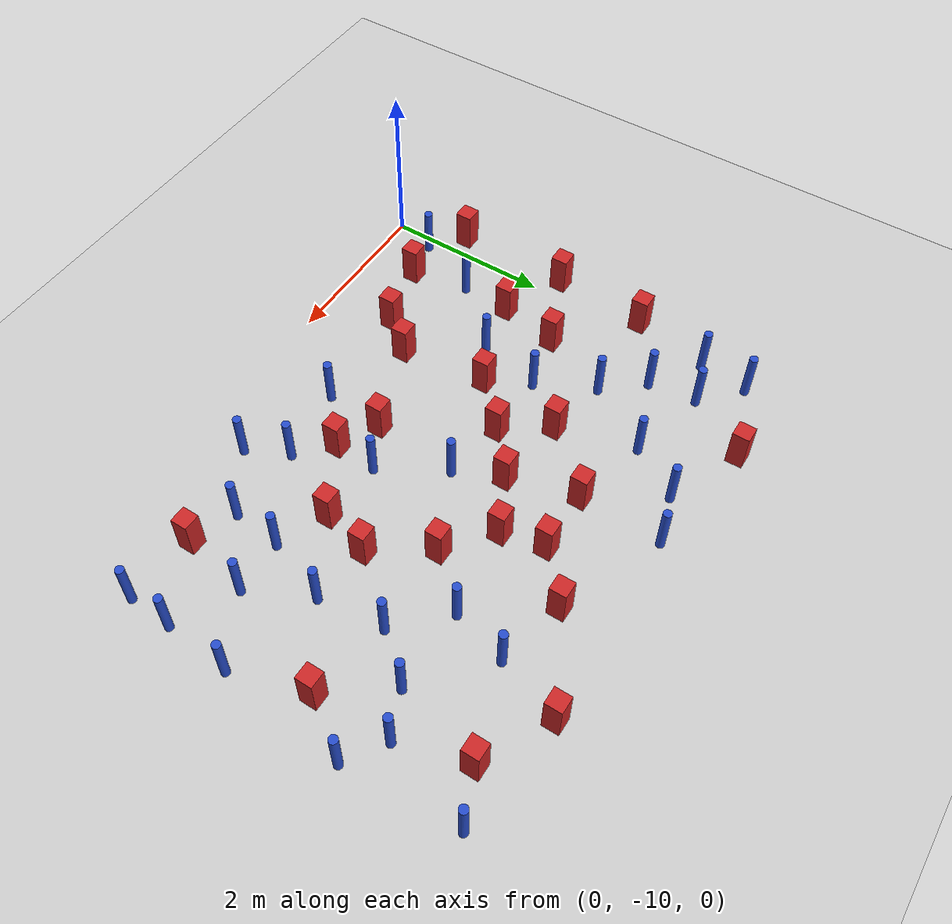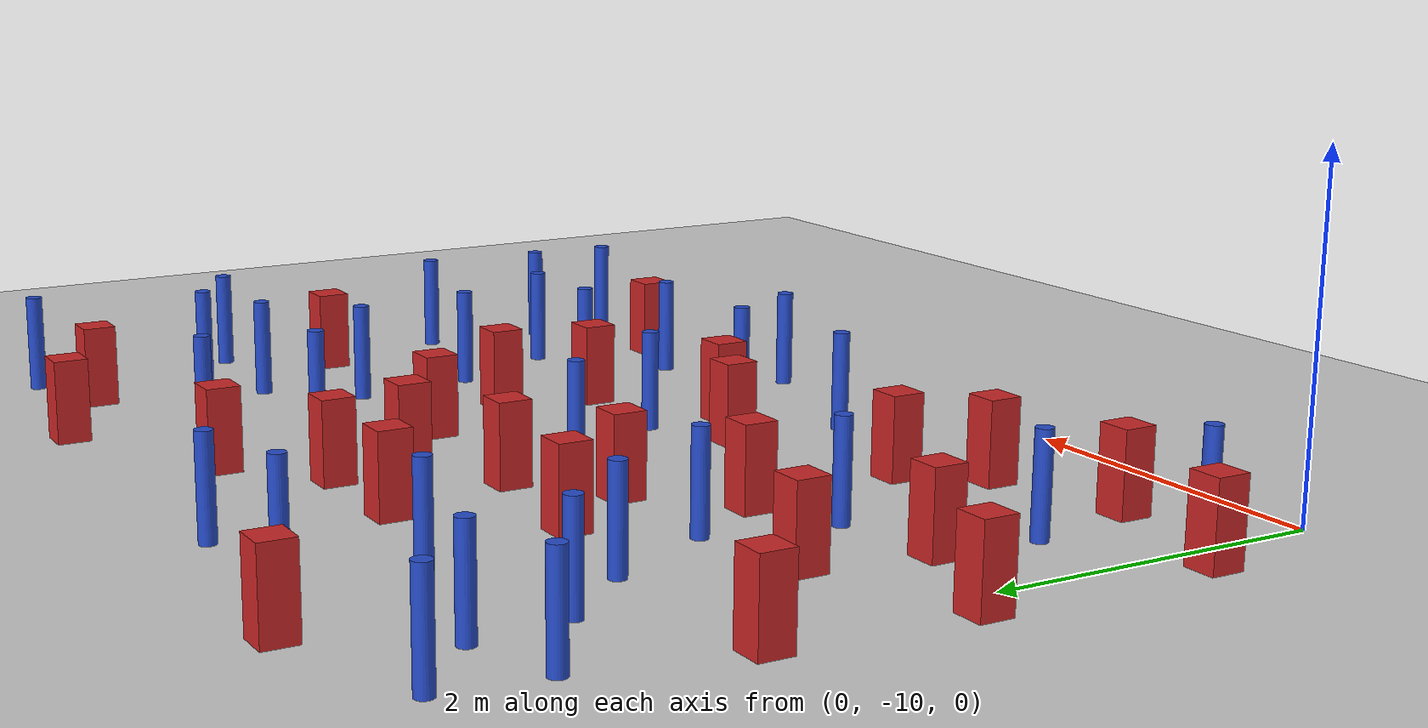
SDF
<sdf version="1.6">
 <world name="default">
  <model name="ground_plane">
   <static>1</static>
   <link name="link">
    <collision name="collision">
     <geometry><plane><normal>0 0 1</normal><size>100 100</size></plane></geometry>
     <surface><friction><ode><mu>100</mu><mu2>50</mu2></ode></friction></surface>
    </collision>
    <visual name="visual">
     <cast_shadows>0</cast_shadows>
     <geometry><plane><normal>0 0 1</normal><size>100 100</size></plane></geometry>
     <material>
      <ambient>1.0 1.0 1.0 1.0</ambient>
      <diffuse>0.8 0.8 0.8 1.0</diffuse>
      <specular>0.01 0.01 0.01 1.000000</specular>
     </material>
    </visual>
   </link>
  </model>
  <model name="pole_obstacle6">
   <static>true</static>
   <pose>4.70599011204 -8.35303087441 7.38925637345e-09 -8.471706928e-08 1.24976765081e-08 -1.74513093015e-07</pose>
   <link name="link">
    <pose>0 0 0.3 0 -0 0</pose>
    <inertial>
     <mass>1</mass>
     <inertia><ixx>0.145833</ixx><ixy>0</ixy><ixz>0</ixz><iyy>0.145833</iyy><iyz>0</iyz><izz>0.125</izz></inertia>
    </inertial>
    <collision name="collision">
     <geometry><cylinder><radius>0.05</radius><length>.6</length></cylinder></geometry>
    </collision>
    <visual name="visual">
     <geometry><cylinder><radius>0.05</radius><length>.6</length></cylinder></geometry>
     <material>
      <script><name>Gazebo/Blue</name><uri>file://media/materials/scripts/gazebo.material</uri></script>
     </material>
    </visual>
   </link>
  </model>
  <model name="square_post_obstacle5">
   <static>true</static>
   <pose>5.84599909969 -6.99812463571 1.91545236811e-07 -7.35059704564e-06 1.12565212e-07 2.39332434364e-05</pose>
   <link name="link">
    <pose>0 0 0.25 0 -0 0</pose>
    <inertial>
     <mass>100</mass>
     <inertia>
      <ixx>0.166667</ixx>
      <ixy>0</ixy>
      <ixz>0</ixz>
      <iyy>0.166667</iyy>
      <iyz>0</iyz>
      <izz>0.166667</izz>
     </inertia>
    </inertial>
    <collision name="collision"><geometry><box><size>.2 .2 .5</size></box></geometry></collision>
    <visual name="visual">
     <geometry><box><size>.2 .2 .5</size></box></geometry>
     <material>
      <script><name>Gazebo/Red</name><uri>file://media/materials/scripts/gazebo.material</uri></script>
     </material>
    </visual>
   </link>
  </model>
  <model name="square_post_obstacle7">
   <static>true</static>
   <pose>3.74116895942 -5.48608894107 1.91545236811e-07 -7.35059704564e-06 1.12565212e-07 2.39332434364e-05</pose>
   <link name="link">
    <pose>0 0 0.25 0 -0 0</pose>
    <inertial>
     <mass>100</mass>
     <inertia>
      <ixx>0.166667</ixx>
      <ixy>0</ixy>
      <ixz>0</ixz>
      <iyy>0.166667</iyy>
      <iyz>0</iyz>
      <izz>0.166667</izz>
     </inertia>
    </inertial>
    <collision name="collision"><geometry><box><size>.2 .2 .5</size></box></geometry></collision>
    <visual name="visual">
     <geometry><box><size>.2 .2 .5</size></box></geometry>
     <material>
      <script><name>Gazebo/Red</name><uri>file://media/materials/scripts/gazebo.material</uri></script>
     </material>
    </visual>
   </link>
  </model>
  <model name="pole_obstacle9">
   <static>true</static>
   <pose>2.92601557178 -7.32535560312 7.38925637345e-09 -8.47170692798e-08 1.24976765033e-08 -1.74513093019e-07</pose>
   <link name="link">
    <pose>0 0 0.3 0 -0 0</pose>
    <inertial>
     <mass>1</mass>
     <inertia><ixx>0.145833</ixx><ixy>0</ixy><ixz>0</ixz><iyy>0.145833</iyy><iyz>0</iyz><izz>0.125</izz></inertia>
    </inertial>
    <collision name="collision">
     <geometry><cylinder><radius>0.05</radius><length>.6</length></cylinder></geometry>
    </collision>
    <visual name="visual">
     <geometry><cylinder><radius>0.05</radius><length>.6</length></cylinder></geometry>
     <material>
      <script><name>Gazebo/Blue</name><uri>file://media/materials/scripts/gazebo.material</uri></script>
     </material>
    </visual>
   </link>
  </model>
  <model name="square_post_obstacle9">
   <static>true</static>
   <pose>1.453826613 -9.14333168105 1.91545236811e-07 -7.35059704564e-06 1.12565212e-07 2.39332434364e-05</pose>
   <link name="link">
    <pose>0 0 0.25 0 -0 0</pose>
    <inertial>
     <mass>100</mass>
     <inertia>
      <ixx>0.166667</ixx>
      <ixy>0</ixy>
      <ixz>0</ixz>
      <iyy>0.166667</iyy>
      <iyz>0</iyz>
      <izz>0.166667</izz>
     </inertia>
    </inertial>
    <collision name="collision"><geometry><box><size>.2 .2 .5</size></box></geometry></collision>
    <visual name="visual">
     <geometry><box><size>.2 .2 .5</size></box></geometry>
     <material>
      <script><name>Gazebo/Red</name><uri>file://media/materials/scripts/gazebo.material</uri></script>
     </material>
    </visual>
   </link>
  </model>
  <model name="square_post_obstacle18">
   <static>true</static>
   <pose>-0.133258296363 -6.60814210632 1.91545236811e-07 -7.35059704564e-06 1.12565212e-07 2.39332434364e-05</pose>
   <link name="link">
    <pose>0 0 0.25 0 -0 0</pose>
    <inertial>
     <mass>100</mass>
     <inertia>
      <ixx>0.166667</ixx>
      <ixy>0</ixy>
      <ixz>0</ixz>
      <iyy>0.166667</iyy>
      <iyz>0</iyz>
      <izz>0.166667</izz>
     </inertia>
    </inertial>
    <collision name="collision"><geometry><box><size>.2 .2 .5</size></box></geometry></collision>
    <visual name="visual">
     <geometry><box><size>.2 .2 .5</size></box></geometry>
     <material>
      <script><name>Gazebo/Red</name><uri>file://media/materials/scripts/gazebo.material</uri></script>
     </material>
    </visual>
   </link>
  </model>
  <model name="pole_obstacle25">
   <static>true</static>
   <pose>2.79421802704 -9.0634090278 7.38925637345e-09 -8.47170692793e-08 1.24976764408e-08 -1.74513093041e-07</pose>
   <link name="link">
    <pose>0 0 0.3 0 -0 0</pose>
    <inertial>
     <mass>1</mass>
     <inertia><ixx>0.145833</ixx><ixy>0</ixy><ixz>0</ixz><iyy>0.145833</iyy><iyz>0</iyz><izz>0.125</izz></inertia>
    </inertial>
    <collision name="collision">
     <geometry><cylinder><radius>0.05</radius><length>.6</length></cylinder></geometry>
    </collision>
    <visual name="visual">
     <geometry><cylinder><radius>0.05</radius><length>.6</length></cylinder></geometry>
     <material>
      <script><name>Gazebo/Blue</name><uri>file://media/materials/scripts/gazebo.material</uri></script>
     </material>
    </visual>
   </link>
  </model>
  <model name="square_post_obstacle19">
   <static>true</static>
   <pose>2.46940544794 -5.96693848248 1.91545236811e-07 -7.35059704564e-06 1.12565212e-07 2.39332434364e-05</pose>
   <link name="link">
    <pose>0 0 0.25 0 -0 0</pose>
    <inertial>
     <mass>100</mass>
     <inertia>
      <ixx>0.166667</ixx>
      <ixy>0</ixy>
      <ixz>0</ixz>
      <iyy>0.166667</iyy>
      <iyz>0</iyz>
      <izz>0.166667</izz>
     </inertia>
    </inertial>
    <collision name="collision"><geometry><box><size>.2 .2 .5</size></box></geometry></collision>
    <visual name="visual">
     <geometry><box><size>.2 .2 .5</size></box></geometry>
     <material>
      <script><name>Gazebo/Red</name><uri>file://media/materials/scripts/gazebo.material</uri></script>
     </material>
    </visual>
   </link>
  </model>
  <model name="pole_obstacle38">
   <static>true</static>
   <pose>6.25783375898 -6.40446437467 7.38925637345e-09 -8.47170692796e-08 1.24976764786e-08 -1.74513093032e-07</pose>
   <link name="link">
    <pose>0 0 0.3 0 -0 0</pose>
    <inertial>
     <mass>1</mass>
     <inertia><ixx>0.145833</ixx><ixy>0</ixy><ixz>0</ixz><iyy>0.145833</iyy><iyz>0</iyz><izz>0.125</izz></inertia>
    </inertial>
    <collision name="collision">
     <geometry><cylinder><radius>0.05</radius><length>.6</length></cylinder></geometry>
    </collision>
    <visual name="visual">
     <geometry><cylinder><radius>0.05</radius><length>.6</length></cylinder></geometry>
     <material>
      <script><name>Gazebo/Blue</name><uri>file://media/materials/scripts/gazebo.material</uri></script>
     </material>
    </visual>
   </link>
  </model>
  <model name="pole_obstacle42">
   <static>true</static>
   <pose>5.82190105534 -6.11238558837 7.38925637345e-09 -8.47170692796e-08 1.24976764786e-08 -1.74513093032e-07</pose>
   <link name="link">
    <pose>0 0 0.3 0 -0 0</pose>
    <inertial>
     <mass>1</mass>
     <inertia><ixx>0.145833</ixx><ixy>0</ixy><ixz>0</ixz><iyy>0.145833</iyy><iyz>0</iyz><izz>0.125</izz></inertia>
    </inertial>
    <collision name="collision">
     <geometry><cylinder><radius>0.05</radius><length>.6</length></cylinder></geometry>
    </collision>
    <visual name="visual">
     <geometry><cylinder><radius>0.05</radius><length>.6</length></cylinder></geometry>
     <material>
      <script><name>Gazebo/Blue</name><uri>file://media/materials/scripts/gazebo.material</uri></script>
     </material>
    </visual>
   </link>
  </model>
  <model name="pole_obstacle49">
   <static>true</static>
   <pose>0.0575694196036 -5.68917199242 7.38925637345e-09 -8.471706928e-08 1.2497676505e-08 -1.74513093019e-07</pose>
   <link name="link">
    <pose>0 0 0.3 0 -0 0</pose>
    <inertial>
     <mass>1</mass>
     <inertia><ixx>0.145833</ixx><ixy>0</ixy><ixz>0</ixz><iyy>0.145833</iyy><iyz>0</iyz><izz>0.125</izz></inertia>
    </inertial>
    <collision name="collision">
     <geometry><cylinder><radius>0.05</radius><length>.6</length></cylinder></geometry>
    </collision>
    <visual name="visual">
     <geometry><cylinder><radius>0.05</radius><length>.6</length></cylinder></geometry>
     <material>
      <script><name>Gazebo/Blue</name><uri>file://media/materials/scripts/gazebo.material</uri></script>
     </material>
    </visual>
   </link>
  </model>
  <model name="pole_obstacle50">
   <static>true</static>
   <pose>1.03659716479 -6.53286727461 7.38925637345e-09 -8.47170692799e-08 1.24976765021e-08 -1.74513093019e-07</pose>
   <link name="link">
    <pose>0 0 0.3 0 -0 0</pose>
    <inertial>
     <mass>1</mass>
     <inertia><ixx>0.145833</ixx><ixy>0</ixy><ixz>0</ixz><iyy>0.145833</iyy><iyz>0</iyz><izz>0.125</izz></inertia>
    </inertial>
    <collision name="collision">
     <geometry><cylinder><radius>0.05</radius><length>.6</length></cylinder></geometry>
    </collision>
    <visual name="visual">
     <geometry><cylinder><radius>0.05</radius><length>.6</length></cylinder></geometry>
     <material>
      <script><name>Gazebo/Blue</name><uri>file://media/materials/scripts/gazebo.material</uri></script>
     </material>
    </visual>
   </link>
  </model>
  <model name="pole_obstacle56">
   <static>true</static>
   <pose>6.14910653015 -5.08947522745 7.38925637345e-09 -8.47170692796e-08 1.24976764786e-08 -1.74513093032e-07</pose>
   <link name="link">
    <pose>0 0 0.3 0 -0 0</pose>
    <inertial>
     <mass>1</mass>
     <inertia><ixx>0.145833</ixx><ixy>0</ixy><ixz>0</ixz><iyy>0.145833</iyy><iyz>0</iyz><izz>0.125</izz></inertia>
    </inertial>
    <collision name="collision">
     <geometry><cylinder><radius>0.05</radius><length>.6</length></cylinder></geometry>
    </collision>
    <visual name="visual">
     <geometry><cylinder><radius>0.05</radius><length>.6</length></cylinder></geometry>
     <material>
      <script><name>Gazebo/Blue</name><uri>file://media/materials/scripts/gazebo.material</uri></script>
     </material>
    </visual>
   </link>
  </model>
  <model name="pole_obstacle59">
   <static>true</static>
   <pose>1.54319813354 -5.74601661786 7.38925637345e-09 -8.47170692799e-08 1.24976765033e-08 -1.74513093018e-07</pose>
   <link name="link">
    <pose>0 0 0.3 0 -0 0</pose>
    <inertial>
     <mass>1</mass>
     <inertia><ixx>0.145833</ixx><ixy>0</ixy><ixz>0</ixz><iyy>0.145833</iyy><iyz>0</iyz><izz>0.125</izz></inertia>
    </inertial>
    <collision name="collision">
     <geometry><cylinder><radius>0.05</radius><length>.6</length></cylinder></geometry>
    </collision>
    <visual name="visual">
     <geometry><cylinder><radius>0.05</radius><length>.6</length></cylinder></geometry>
     <material>
      <script><name>Gazebo/Blue</name><uri>file://media/materials/scripts/gazebo.material</uri></script>
     </material>
    </visual>
   </link>
  </model>
  <model name="pole_obstacle66">
   <static>true</static>
   <pose>0.640128559874 -6.07977227123 7.38925637345e-09 -8.471706928e-08 1.24976765086e-08 -1.74513093015e-07</pose>
   <link name="link">
    <pose>0 0 0.3 0 -0 0</pose>
    <inertial>
     <mass>1</mass>
     <inertia><ixx>0.145833</ixx><ixy>0</ixy><ixz>0</ixz><iyy>0.145833</iyy><iyz>0</iyz><izz>0.125</izz></inertia>
    </inertial>
    <collision name="collision">
     <geometry><cylinder><radius>0.05</radius><length>.6</length></cylinder></geometry>
    </collision>
    <visual name="visual">
     <geometry><cylinder><radius>0.05</radius><length>.6</length></cylinder></geometry>
     <material>
      <script><name>Gazebo/Blue</name><uri>file://media/materials/scripts/gazebo.material</uri></script>
     </material>
    </visual>
   </link>
  </model>
  <model name="square_post_obstacle50">
   <static>true</static>
   <pose>5.1624968223 -9.11893360538 1.91545236811e-07 -7.35059704564e-06 1.12565212e-07 2.39332434364e-05</pose>
   <link name="link">
    <pose>0 0 0.25 0 -0 0</pose>
    <inertial>
     <mass>100</mass>
     <inertia>
      <ixx>0.166667</ixx>
      <ixy>0</ixy>
      <ixz>0</ixz>
      <iyy>0.166667</iyy>
      <iyz>0</iyz>
      <izz>0.166667</izz>
     </inertia>
    </inertial>
    <collision name="collision"><geometry><box><size>.2 .2 .5</size></box></geometry></collision>
    <visual name="visual">
     <geometry><box><size>.2 .2 .5</size></box></geometry>
     <material>
      <script><name>Gazebo/Red</name><uri>file://media/materials/scripts/gazebo.material</uri></script>
     </material>
    </visual>
   </link>
  </model>
  <model name="pole_obstacle74">
   <static>true</static>
   <pose>6.00557308897 -9.20032743257 7.38925637345e-09 -8.471706928e-08 1.24976765081e-08 -1.74513093015e-07</pose>
   <link name="link">
    <pose>0 0 0.3 0 -0 0</pose>
    <inertial>
     <mass>1</mass>
     <inertia><ixx>0.145833</ixx><ixy>0</ixy><ixz>0</ixz><iyy>0.145833</iyy><iyz>0</iyz><izz>0.125</izz></inertia>
    </inertial>
    <collision name="collision">
     <geometry><cylinder><radius>0.05</radius><length>.6</length></cylinder></geometry>
    </collision>
    <visual name="visual">
     <geometry><cylinder><radius>0.05</radius><length>.6</length></cylinder></geometry>
     <material>
      <script><name>Gazebo/Blue</name><uri>file://media/materials/scripts/gazebo.material</uri></script>
     </material>
    </visual>
   </link>
  </model>
  <model name="square_post_obstacle64">
   <static>true</static>
   <pose>-0.236108590649 -9.14486215484 1.91545236811e-07 -7.35059704564e-06 1.12565212e-07 2.39332434364e-05</pose>
   <link name="link">
    <pose>0 0 0.25 0 -0 0</pose>
    <inertial>
     <mass>100</mass>
     <inertia>
      <ixx>0.166667</ixx>
      <ixy>0</ixy>
      <ixz>0</ixz>
      <iyy>0.166667</iyy>
      <iyz>0</iyz>
      <izz>0.166667</izz>
     </inertia>
    </inertial>
    <collision name="collision"><geometry><box><size>.2 .2 .5</size></box></geometry></collision>
    <visual name="visual">
     <geometry><box><size>.2 .2 .5</size></box></geometry>
     <material>
      <script><name>Gazebo/Red</name><uri>file://media/materials/scripts/gazebo.material</uri></script>
     </material>
    </visual>
   </link>
  </model>
  <model name="pole_obstacle75">
   <static>true</static>
   <pose>2.4912127473 -4.98205959685 7.38925637345e-09 -8.47170692798e-08 1.24976765033e-08 -1.74513093019e-07</pose>
   <link name="link">
    <pose>0 0 0.3 0 -0 0</pose>
    <inertial>
     <mass>1</mass>
     <inertia><ixx>0.145833</ixx><ixy>0</ixy><ixz>0</ixz><iyy>0.145833</iyy><iyz>0</iyz><izz>0.125</izz></inertia>
    </inertial>
    <collision name="collision">
     <geometry><cylinder><radius>0.05</radius><length>.6</length></cylinder></geometry>
    </collision>
    <visual name="visual">
     <geometry><cylinder><radius>0.05</radius><length>.6</length></cylinder></geometry>
     <material>
      <script><name>Gazebo/Blue</name><uri>file://media/materials/scripts/gazebo.material</uri></script>
     </material>
    </visual>
   </link>
  </model>
  <model name="pole_obstacle79">
   <static>true</static>
   <pose>4.54980420007 -5.67227279406 7.38925637345e-09 -8.47170692796e-08 1.24976764786e-08 -1.74513093032e-07</pose>
   <link name="link">
    <pose>0 0 0.3 0 -0 0</pose>
    <inertial>
     <mass>1</mass>
     <inertia><ixx>0.145833</ixx><ixy>0</ixy><ixz>0</ixz><iyy>0.145833</iyy><iyz>0</iyz><izz>0.125</izz></inertia>
    </inertial>
    <collision name="collision">
     <geometry><cylinder><radius>0.05</radius><length>.6</length></cylinder></geometry>
    </collision>
    <visual name="visual">
     <geometry><cylinder><radius>0.05</radius><length>.6</length></cylinder></geometry>
     <material>
      <script><name>Gazebo/Blue</name><uri>file://media/materials/scripts/gazebo.material</uri></script>
     </material>
    </visual>
   </link>
  </model>
  <model name="square_post_obstacle68">
   <static>true</static>
   <pose>0.697495034961 -7.36135825145 1.91545236811e-07 -7.35059704564e-06 1.12565212e-07 2.39332434364e-05</pose>
   <link name="link">
    <pose>0 0 0.25 0 -0 0</pose>
    <inertial>
     <mass>100</mass>
     <inertia>
      <ixx>0.166667</ixx>
      <ixy>0</ixy>
      <ixz>0</ixz>
      <iyy>0.166667</iyy>
      <iyz>0</iyz>
      <izz>0.166667</izz>
     </inertia>
    </inertial>
    <collision name="collision"><geometry><box><size>.2 .2 .5</size></box></geometry></collision>
    <visual name="visual">
     <geometry><box><size>.2 .2 .5</size></box></geometry>
     <material>
      <script><name>Gazebo/Red</name><uri>file://media/materials/scripts/gazebo.material</uri></script>
     </material>
    </visual>
   </link>
  </model>
  <model name="square_post_obstacle71">
   <static>true</static>
   <pose>3.31854605052 -6.45728962562 1.91545236811e-07 -7.35059704564e-06 1.12565212e-07 2.39332434364e-05</pose>
   <link name="link">
    <pose>0 0 0.25 0 -0 0</pose>
    <inertial>
     <mass>100</mass>
     <inertia>
      <ixx>0.166667</ixx>
      <ixy>0</ixy>
      <ixz>0</ixz>
      <iyy>0.166667</iyy>
      <iyz>0</iyz>
      <izz>0.166667</izz>
     </inertia>
    </inertial>
    <collision name="collision"><geometry><box><size>.2 .2 .5</size></box></geometry></collision>
    <visual name="visual">
     <geometry><box><size>.2 .2 .5</size></box></geometry>
     <material>
      <script><name>Gazebo/Red</name><uri>file://media/materials/scripts/gazebo.material</uri></script>
     </material>
    </visual>
   </link>
  </model>
  <model name="square_post_obstacle81">
   <static>true</static>
   <pose>-0.21473652017 -7.75049130402 1.91545236811e-07 -7.35059704564e-06 1.12565212e-07 2.39332434364e-05</pose>
   <link name="link">
    <pose>0 0 0.25 0 -0 0</pose>
    <inertial>
     <mass>100</mass>
     <inertia>
      <ixx>0.166667</ixx>
      <ixy>0</ixy>
      <ixz>0</ixz>
      <iyy>0.166667</iyy>
      <iyz>0</iyz>
      <izz>0.166667</izz>
     </inertia>
    </inertial>
    <collision name="collision"><geometry><box><size>.2 .2 .5</size></box></geometry></collision>
    <visual name="visual">
     <geometry><box><size>.2 .2 .5</size></box></geometry>
     <material>
      <script><name>Gazebo/Red</name><uri>file://media/materials/scripts/gazebo.material</uri></script>
     </material>
    </visual>
   </link>
  </model>
  <model name="square_post_obstacle88">
   <static>true</static>
   <pose>1.78398663204 -8.73605744649 1.91545236811e-07 -7.35059704564e-06 1.12565212e-07 2.39332434364e-05</pose>
   <link name="link">
    <pose>0 0 0.25 0 -0 0</pose>
    <inertial>
     <mass>100</mass>
     <inertia>
      <ixx>0.166667</ixx>
      <ixy>0</ixy>
      <ixz>0</ixz>
      <iyy>0.166667</iyy>
      <iyz>0</iyz>
      <izz>0.166667</izz>
     </inertia>
    </inertial>
    <collision name="collision"><geometry><box><size>.2 .2 .5</size></box></geometry></collision>
    <visual name="visual">
     <geometry><box><size>.2 .2 .5</size></box></geometry>
     <material>
      <script><name>Gazebo/Red</name><uri>file://media/materials/scripts/gazebo.material</uri></script>
     </material>
    </visual>
   </link>
  </model>
  <model name="square_post_obstacle89">
   <static>true</static>
   <pose>3.3332385579 -8.57081382859 1.91545236811e-07 -7.35059704564e-06 1.12565212e-07 2.39332434364e-05</pose>
   <link name="link">
    <pose>0 0 0.25 0 -0 0</pose>
    <inertial>
     <mass>100</mass>
     <inertia>
      <ixx>0.166667</ixx>
      <ixy>0</ixy>
      <ixz>0</ixz>
      <iyy>0.166667</iyy>
      <iyz>0</iyz>
      <izz>0.166667</izz>
     </inertia>
    </inertial>
    <collision name="collision"><geometry><box><size>.2 .2 .5</size></box></geometry></collision>
    <visual name="visual">
     <geometry><box><size>.2 .2 .5</size></box></geometry>
     <material>
      <script><name>Gazebo/Red</name><uri>file://media/materials/scripts/gazebo.material</uri></script>
     </material>
    </visual>
   </link>
  </model>
  <model name="pole_obstacle101">
   <static>true</static>
   <pose>4.63817925059 -8.93773486941 7.38925637345e-09 -8.471706928e-08 1.24976765081e-08 -1.74513093015e-07</pose>
   <link name="link">
    <pose>0 0 0.3 0 -0 0</pose>
    <inertial>
     <mass>1</mass>
     <inertia><ixx>0.145833</ixx><ixy>0</ixy><ixz>0</ixz><iyy>0.145833</iyy><iyz>0</iyz><izz>0.125</izz></inertia>
    </inertial>
    <collision name="collision">
     <geometry><cylinder><radius>0.05</radius><length>.6</length></cylinder></geometry>
    </collision>
    <visual name="visual">
     <geometry><cylinder><radius>0.05</radius><length>.6</length></cylinder></geometry>
     <material>
      <script><name>Gazebo/Blue</name><uri>file://media/materials/scripts/gazebo.material</uri></script>
     </material>
    </visual>
   </link>
  </model>
  <model name="square_post_obstacle95">
   <static>true</static>
   <pose>1.02875866102 -4.77887500821 1.91545236811e-07 -7.35059704564e-06 1.12565212e-07 2.39332434364e-05</pose>
   <link name="link">
    <pose>0 0 0.25 0 -0 0</pose>
    <inertial>
     <mass>100</mass>
     <inertia>
      <ixx>0.166667</ixx>
      <ixy>0</ixy>
      <ixz>0</ixz>
      <iyy>0.166667</iyy>
      <iyz>0</iyz>
      <izz>0.166667</izz>
     </inertia>
    </inertial>
    <collision name="collision"><geometry><box><size>.2 .2 .5</size></box></geometry></collision>
    <visual name="visual">
     <geometry><box><size>.2 .2 .5</size></box></geometry>
     <material>
      <script><name>Gazebo/Red</name><uri>file://media/materials/scripts/gazebo.material</uri></script>
     </material>
    </visual>
   </link>
  </model>
  <model name="square_post_obstacle96">
   <static>true</static>
   <pose>1.66711459529 -7.69625989773 1.91545236811e-07 -7.35059704564e-06 1.12565212e-07 2.39332434364e-05</pose>
   <link name="link">
    <pose>0 0 0.25 0 -0 0</pose>
    <inertial>
     <mass>100</mass>
     <inertia>
      <ixx>0.166667</ixx>
      <ixy>0</ixy>
      <ixz>0</ixz>
      <iyy>0.166667</iyy>
      <iyz>0</iyz>
      <izz>0.166667</izz>
     </inertia>
    </inertial>
    <collision name="collision"><geometry><box><size>.2 .2 .5</size></box></geometry></collision>
    <visual name="visual">
     <geometry><box><size>.2 .2 .5</size></box></geometry>
     <material>
      <script><name>Gazebo/Red</name><uri>file://media/materials/scripts/gazebo.material</uri></script>
     </material>
    </visual>
   </link>
  </model>
  <model name="square_post_obstacle107">
   <static>true</static>
   <pose>5.58822938069 -5.32369948415 1.91545236811e-07 -7.35059704564e-06 1.12565212e-07 2.39332434364e-05</pose>
   <link name="link">
    <pose>0 0 0.25 0 -0 0</pose>
    <inertial>
     <mass>100</mass>
     <inertia>
      <ixx>0.166667</ixx>
      <ixy>0</ixy>
      <ixz>0</ixz>
      <iyy>0.166667</iyy>
      <iyz>0</iyz>
      <izz>0.166667</izz>
     </inertia>
    </inertial>
    <collision name="collision"><geometry><box><size>.2 .2 .5</size></box></geometry></collision>
    <visual name="visual">
     <geometry><box><size>.2 .2 .5</size></box></geometry>
     <material>
      <script><name>Gazebo/Red</name><uri>file://media/materials/scripts/gazebo.material</uri></script>
     </material>
    </visual>
   </link>
  </model>
  <model name="square_post_obstacle117">
   <static>true</static>
   <pose>0.556778686371 -8.07036091322 1.91545236811e-07 -7.35059704564e-06 1.12565212e-07 2.39332434364e-05</pose>
   <link name="link">
    <pose>0 0 0.25 0 -0 0</pose>
    <inertial>
     <mass>100</mass>
     <inertia>
      <ixx>0.166667</ixx>
      <ixy>0</ixy>
      <ixz>0</ixz>
      <iyy>0.166667</iyy>
      <iyz>0</iyz>
      <izz>0.166667</izz>
     </inertia>
    </inertial>
    <collision name="collision"><geometry><box><size>.2 .2 .5</size></box></geometry></collision>
    <visual name="visual">
     <geometry><box><size>.2 .2 .5</size></box></geometry>
     <material>
      <script><name>Gazebo/Red</name><uri>file://media/materials/scripts/gazebo.material</uri></script>
     </material>
    </visual>
   </link>
  </model>
  <model name="pole_obstacle125">
   <static>true</static>
   <pose>6.10894767228 -7.88280483212 7.38925637345e-09 -8.47170692796e-08 1.24976764786e-08 -1.74513093032e-07</pose>
   <link name="link">
    <pose>0 0 0.3 0 -0 0</pose>
    <inertial>
     <mass>1</mass>
     <inertia><ixx>0.145833</ixx><ixy>0</ixy><ixz>0</ixz><iyy>0.145833</iyy><iyz>0</iyz><izz>0.125</izz></inertia>
    </inertial>
    <collision name="collision">
     <geometry><cylinder><radius>0.05</radius><length>.6</length></cylinder></geometry>
    </collision>
    <visual name="visual">
     <geometry><cylinder><radius>0.05</radius><length>.6</length></cylinder></geometry>
     <material>
      <script><name>Gazebo/Blue</name><uri>file://media/materials/scripts/gazebo.material</uri></script>
     </material>
    </visual>
   </link>
  </model>
  <model name="square_post_obstacle122">
   <static>true</static>
   <pose>0.644417306333 -9.36694796628 1.91545236811e-07 -7.35059704564e-06 1.12565212e-07 2.39332434364e-05</pose>
   <link name="link">
    <pose>0 0 0.25 0 -0 0</pose>
    <inertial>
     <mass>100</mass>
     <inertia>
      <ixx>0.166667</ixx>
      <ixy>0</ixy>
      <ixz>0</ixz>
      <iyy>0.166667</iyy>
      <iyz>0</iyz>
      <izz>0.166667</izz>
     </inertia>
    </inertial>
    <collision name="collision"><geometry><box><size>.2 .2 .5</size></box></geometry></collision>
    <visual name="visual">
     <geometry><box><size>.2 .2 .5</size></box></geometry>
     <material>
      <script><name>Gazebo/Red</name><uri>file://media/materials/scripts/gazebo.material</uri></script>
     </material>
    </visual>
   </link>
  </model>
  <model name="pole_obstacle140">
   <static>true</static>
   <pose>4.36152807272 -6.32047424083 7.38925637345e-09 -8.47170692796e-08 1.24976764786e-08 -1.74513093032e-07</pose>
   <link name="link">
    <pose>0 0 0.3 0 -0 0</pose>
    <inertial>
     <mass>1</mass>
     <inertia><ixx>0.145833</ixx><ixy>0</ixy><ixz>0</ixz><iyy>0.145833</iyy><iyz>0</iyz><izz>0.125</izz></inertia>
    </inertial>
    <collision name="collision">
     <geometry><cylinder><radius>0.05</radius><length>.6</length></cylinder></geometry>
    </collision>
    <visual name="visual">
     <geometry><cylinder><radius>0.05</radius><length>.6</length></cylinder></geometry>
     <material>
      <script><name>Gazebo/Blue</name><uri>file://media/materials/scripts/gazebo.material</uri></script>
     </material>
    </visual>
   </link>
  </model>
  <model name="pole_obstacle156">
   <static>true</static>
   <pose>0.572919057052 -5.50793135223 7.38925637345e-09 -8.471706928e-08 1.24976765086e-08 -1.74513093015e-07</pose>
   <link name="link">
    <pose>0 0 0.3 0 -0 0</pose>
    <inertial>
     <mass>1</mass>
     <inertia><ixx>0.145833</ixx><ixy>0</ixy><ixz>0</ixz><iyy>0.145833</iyy><iyz>0</iyz><izz>0.125</izz></inertia>
    </inertial>
    <collision name="collision">
     <geometry><cylinder><radius>0.05</radius><length>.6</length></cylinder></geometry>
    </collision>
    <visual name="visual">
     <geometry><cylinder><radius>0.05</radius><length>.6</length></cylinder></geometry>
     <material>
      <script><name>Gazebo/Blue</name><uri>file://media/materials/scripts/gazebo.material</uri></script>
     </material>
    </visual>
   </link>
  </model>
  <model name="square_post_obstacle159">
   <static>true</static>
   <pose>4.12752347349 -8.09570269114 1.91545236811e-07 -7.35059704564e-06 1.12565212e-07 2.39332434364e-05</pose>
   <link name="link">
    <pose>0 0 0.25 0 -0 0</pose>
    <inertial>
     <mass>100</mass>
     <inertia>
      <ixx>0.166667</ixx>
      <ixy>0</ixy>
      <ixz>0</ixz>
      <iyy>0.166667</iyy>
      <iyz>0</iyz>
      <izz>0.166667</izz>
     </inertia>
    </inertial>
    <collision name="collision"><geometry><box><size>.2 .2 .5</size></box></geometry></collision>
    <visual name="visual">
     <geometry><box><size>.2 .2 .5</size></box></geometry>
     <material>
      <script><name>Gazebo/Red</name><uri>file://media/materials/scripts/gazebo.material</uri></script>
     </material>
    </visual>
   </link>
  </model>
  <model name="pole_obstacle175">
   <static>true</static>
   <pose>1.38078817405 -7.20682874212 7.38925637345e-09 -8.47170692799e-08 1.24976765033e-08 -1.74513093018e-07</pose>
   <link name="link">
    <pose>0 0 0.3 0 -0 0</pose>
    <inertial>
     <mass>1</mass>
     <inertia><ixx>0.145833</ixx><ixy>0</ixy><ixz>0</ixz><iyy>0.145833</iyy><iyz>0</iyz><izz>0.125</izz></inertia>
    </inertial>
    <collision name="collision">
     <geometry><cylinder><radius>0.05</radius><length>.6</length></cylinder></geometry>
    </collision>
    <visual name="visual">
     <geometry><cylinder><radius>0.05</radius><length>.6</length></cylinder></geometry>
     <material>
      <script><name>Gazebo/Blue</name><uri>file://media/materials/scripts/gazebo.material</uri></script>
     </material>
    </visual>
   </link>
  </model>
  <model name="square_post_obstacle175">
   <static>true</static>
   <pose>4.79861822334 -4.92269634674 1.91545236811e-07 -7.35059704564e-06 1.12565212e-07 2.39332434364e-05</pose>
   <link name="link">
    <pose>0 0 0.25 0 -0 0</pose>
    <inertial>
     <mass>100</mass>
     <inertia>
      <ixx>0.166667</ixx>
      <ixy>0</ixy>
      <ixz>0</ixz>
      <iyy>0.166667</iyy>
      <iyz>0</iyz>
      <izz>0.166667</izz>
     </inertia>
    </inertial>
    <collision name="collision"><geometry><box><size>.2 .2 .5</size></box></geometry></collision>
    <visual name="visual">
     <geometry><box><size>.2 .2 .5</size></box></geometry>
     <material>
      <script><name>Gazebo/Red</name><uri>file://media/materials/scripts/gazebo.material</uri></script>
     </material>
    </visual>
   </link>
  </model>
  <model name="pole_obstacle185">
   <static>true</static>
   <pose>3.70150022474 -8.93795715473 7.38925637345e-09 -8.47170692793e-08 1.24976764408e-08 -1.74513093041e-07</pose>
   <link name="link">
    <pose>0 0 0.3 0 -0 0</pose>
    <inertial>
     <mass>1</mass>
     <inertia><ixx>0.145833</ixx><ixy>0</ixy><ixz>0</ixz><iyy>0.145833</iyy><iyz>0</iyz><izz>0.125</izz></inertia>
    </inertial>
    <collision name="collision">
     <geometry><cylinder><radius>0.05</radius><length>.6</length></cylinder></geometry>
    </collision>
    <visual name="visual">
     <geometry><cylinder><radius>0.05</radius><length>.6</length></cylinder></geometry>
     <material>
      <script><name>Gazebo/Blue</name><uri>file://media/materials/scripts/gazebo.material</uri></script>
     </material>
    </visual>
   </link>
  </model>
  <model name="square_post_obstacle184">
   <static>true</static>
   <pose>1.80700718027 -6.670379069 1.91545236811e-07 -7.35059704564e-06 1.12565212e-07 2.39332434364e-05</pose>
   <link name="link">
    <pose>0 0 0.25 0 -0 0</pose>
    <inertial>
     <mass>100</mass>
     <inertia>
      <ixx>0.166667</ixx>
      <ixy>0</ixy>
      <ixz>0</ixz>
      <iyy>0.166667</iyy>
      <iyz>0</iyz>
      <izz>0.166667</izz>
     </inertia>
    </inertial>
    <collision name="collision"><geometry><box><size>.2 .2 .5</size></box></geometry></collision>
    <visual name="visual">
     <geometry><box><size>.2 .2 .5</size></box></geometry>
     <material>
      <script><name>Gazebo/Red</name><uri>file://media/materials/scripts/gazebo.material</uri></script>
     </material>
    </visual>
   </link>
  </model>
  <model name="square_post_obstacle187">
   <static>true</static>
   <pose>3.2069366247 -5.95479263228 1.91545236811e-07 -7.35059704564e-06 1.12565212e-07 2.39332434364e-05</pose>
   <link name="link">
    <pose>0 0 0.25 0 -0 0</pose>
    <inertial>
     <mass>100</mass>
     <inertia>
      <ixx>0.166667</ixx>
      <ixy>0</ixy>
      <ixz>0</ixz>
      <iyy>0.166667</iyy>
      <iyz>0</iyz>
      <izz>0.166667</izz>
     </inertia>
    </inertial>
    <collision name="collision"><geometry><box><size>.2 .2 .5</size></box></geometry></collision>
    <visual name="visual">
     <geometry><box><size>.2 .2 .5</size></box></geometry>
     <material>
      <script><name>Gazebo/Red</name><uri>file://media/materials/scripts/gazebo.material</uri></script>
     </material>
    </visual>
   </link>
  </model>
  <model name="square_post_obstacle188">
   <static>true</static>
   <pose>4.29068738623 -7.5290952042 1.91545236811e-07 -7.35059704564e-06 1.12565212e-07 2.39332434364e-05</pose>
   <link name="link">
    <pose>0 0 0.25 0 -0 0</pose>
    <inertial>
     <mass>100</mass>
     <inertia>
      <ixx>0.166667</ixx>
      <ixy>0</ixy>
      <ixz>0</ixz>
      <iyy>0.166667</iyy>
      <iyz>0</iyz>
      <izz>0.166667</izz>
     </inertia>
    </inertial>
    <collision name="collision"><geometry><box><size>.2 .2 .5</size></box></geometry></collision>
    <visual name="visual">
     <geometry><box><size>.2 .2 .5</size></box></geometry>
     <material>
      <script><name>Gazebo/Red</name><uri>file://media/materials/scripts/gazebo.material</uri></script>
     </material>
    </visual>
   </link>
  </model>
  <model name="square_post_obstacle197">
   <static>true</static>
   <pose>2.18182560792 -7.20111211524 1.91545236811e-07 -7.35059704564e-06 1.12565212e-07 2.39332434364e-05</pose>
   <link name="link">
    <pose>0 0 0.25 0 -0 0</pose>
    <inertial>
     <mass>100</mass>
     <inertia>
      <ixx>0.166667</ixx>
      <ixy>0</ixy>
      <ixz>0</ixz>
      <iyy>0.166667</iyy>
      <iyz>0</iyz>
      <izz>0.166667</izz>
     </inertia>
    </inertial>
    <collision name="collision"><geometry><box><size>.2 .2 .5</size></box></geometry></collision>
    <visual name="visual">
     <geometry><box><size>.2 .2 .5</size></box></geometry>
     <material>
      <script><name>Gazebo/Red</name><uri>file://media/materials/scripts/gazebo.material</uri></script>
     </material>
    </visual>
   </link>
  </model>
  <model name="pole_obstacle189">
   <static>true</static>
   <pose>6.03792305306 -8.672241727 7.38925637345e-09 -8.471706928e-08 1.24976765081e-08 -1.74513093015e-07</pose>
   <link name="link">
    <pose>0 0 0.3 0 -0 0</pose>
    <inertial>
     <mass>1</mass>
     <inertia><ixx>0.145833</ixx><ixy>0</ixy><ixz>0</ixz><iyy>0.145833</iyy><iyz>0</iyz><izz>0.125</izz></inertia>
    </inertial>
    <collision name="collision">
     <geometry><cylinder><radius>0.05</radius><length>.6</length></cylinder></geometry>
    </collision>
    <visual name="visual">
     <geometry><cylinder><radius>0.05</radius><length>.6</length></cylinder></geometry>
     <material>
      <script><name>Gazebo/Blue</name><uri>file://media/materials/scripts/gazebo.material</uri></script>
     </material>
    </visual>
   </link>
  </model>
  <model name="square_post_obstacle199">
   <static>true</static>
   <pose>2.85323037919 -8.33675913723 1.91545236811e-07 -7.35059704564e-06 1.12565212e-07 2.39332434364e-05</pose>
   <link name="link">
    <pose>0 0 0.25 0 -0 0</pose>
    <inertial>
     <mass>100</mass>
     <inertia>
      <ixx>0.166667</ixx>
      <ixy>0</ixy>
      <ixz>0</ixz>
      <iyy>0.166667</iyy>
      <iyz>0</iyz>
      <izz>0.166667</izz>
     </inertia>
    </inertial>
    <collision name="collision"><geometry><box><size>.2 .2 .5</size></box></geometry></collision>
    <visual name="visual">
     <geometry><box><size>.2 .2 .5</size></box></geometry>
     <material>
      <script><name>Gazebo/Red</name><uri>file://media/materials/scripts/gazebo.material</uri></script>
     </material>
    </visual>
   </link>
  </model>
  <model name="pole_obstacle191">
   <static>true</static>
   <pose>4.89195608462 -6.83941620426 7.38925637345e-09 -8.47170692796e-08 1.24976764786e-08 -1.74513093032e-07</pose>
   <link name="link">
    <pose>0 0 0.3 0 -0 0</pose>
    <inertial>
     <mass>1</mass>
     <inertia><ixx>0.145833</ixx><ixy>0</ixy><ixz>0</ixz><iyy>0.145833</iyy><iyz>0</iyz><izz>0.125</izz></inertia>
    </inertial>
    <collision name="collision">
     <geometry><cylinder><radius>0.05</radius><length>.6</length></cylinder></geometry>
    </collision>
    <visual name="visual">
     <geometry><cylinder><radius>0.05</radius><length>.6</length></cylinder></geometry>
     <material>
      <script><name>Gazebo/Blue</name><uri>file://media/materials/scripts/gazebo.material</uri></script>
     </material>
    </visual>
   </link>
  </model>
  <model name="square_post_obstacle203">
   <static>true</static>
   <pose>3.85735900072 -6.87665161291 1.91545236811e-07 -7.35059704564e-06 1.12565212e-07 2.39332434364e-05</pose>
   <link name="link">
    <pose>0 0 0.25 0 -0 0</pose>
    <inertial>
     <mass>100</mass>
     <inertia>
      <ixx>0.166667</ixx>
      <ixy>0</ixy>
      <ixz>0</ixz>
      <iyy>0.166667</iyy>
      <iyz>0</iyz>
      <izz>0.166667</izz>
     </inertia>
    </inertial>
    <collision name="collision"><geometry><box><size>.2 .2 .5</size></box></geometry></collision>
    <visual name="visual">
     <geometry><box><size>.2 .2 .5</size></box></geometry>
     <material>
      <script><name>Gazebo/Red</name><uri>file://media/materials/scripts/gazebo.material</uri></script>
     </material>
    </visual>
   </link>
  </model>
  <model name="square_post_obstacle207">
   <static>true</static>
   <pose>2.69512103411 -6.77718492503 1.91545236811e-07 -7.35059704564e-06 1.12565212e-07 2.39332434364e-05</pose>
   <link name="link">
    <pose>0 0 0.25 0 -0 0</pose>
    <inertial>
     <mass>100</mass>
     <inertia>
      <ixx>0.166667</ixx>
      <ixy>0</ixy>
      <ixz>0</ixz>
      <iyy>0.166667</iyy>
      <iyz>0</iyz>
      <izz>0.166667</izz>
     </inertia>
    </inertial>
    <collision name="collision"><geometry><box><size>.2 .2 .5</size></box></geometry></collision>
    <visual name="visual">
     <geometry><box><size>.2 .2 .5</size></box></geometry>
     <material>
      <script><name>Gazebo/Red</name><uri>file://media/materials/scripts/gazebo.material</uri></script>
     </material>
    </visual>
   </link>
  </model>
  <model name="pole_obstacle196">
   <static>true</static>
   <pose>4.98296794228 -7.6082756649 7.38925637345e-09 -8.47170692796e-08 1.24976764786e-08 -1.74513093032e-07</pose>
   <link name="link">
    <pose>0 0 0.3 0 -0 0</pose>
    <inertial>
     <mass>1</mass>
     <inertia><ixx>0.145833</ixx><ixy>0</ixy><ixz>0</ixz><iyy>0.145833</iyy><iyz>0</iyz><izz>0.125</izz></inertia>
    </inertial>
    <collision name="collision">
     <geometry><cylinder><radius>0.05</radius><length>.6</length></cylinder></geometry>
    </collision>
    <visual name="visual">
     <geometry><cylinder><radius>0.05</radius><length>.6</length></cylinder></geometry>
     <material>
      <script><name>Gazebo/Blue</name><uri>file://media/materials/scripts/gazebo.material</uri></script>
     </material>
    </visual>
   </link>
  </model>
  <model name="pole_obstacle199">
   <static>true</static>
   <pose>1.2071086189 -7.95761594313 7.38925637345e-09 -8.47170692799e-08 1.24976764958e-08 -1.74513093023e-07</pose>
   <link name="link">
    <pose>0 0 0.3 0 -0 0</pose>
    <inertial>
     <mass>1</mass>
     <inertia><ixx>0.145833</ixx><ixy>0</ixy><ixz>0</ixz><iyy>0.145833</iyy><iyz>0</iyz><izz>0.125</izz></inertia>
    </inertial>
    <collision name="collision">
     <geometry><cylinder><radius>0.05</radius><length>.6</length></cylinder></geometry>
    </collision>
    <visual name="visual">
     <geometry><cylinder><radius>0.05</radius><length>.6</length></cylinder></geometry>
     <material>
      <script><name>Gazebo/Blue</name><uri>file://media/materials/scripts/gazebo.material</uri></script>
     </material>
    </visual>
   </link>
  </model>
  <model name="pole_obstacle202">
   <static>true</static>
   <pose>1.92354335534 -5.15485948486 7.38925637345e-09 -8.47170692799e-08 1.24976765033e-08 -1.74513093018e-07</pose>
   <link name="link">
    <pose>0 0 0.3 0 -0 0</pose>
    <inertial>
     <mass>1</mass>
     <inertia><ixx>0.145833</ixx><ixy>0</ixy><ixz>0</ixz><iyy>0.145833</iyy><iyz>0</iyz><izz>0.125</izz></inertia>
    </inertial>
    <collision name="collision">
     <geometry><cylinder><radius>0.05</radius><length>.6</length></cylinder></geometry>
    </collision>
    <visual name="visual">
     <geometry><cylinder><radius>0.05</radius><length>.6</length></cylinder></geometry>
     <material>
      <script><name>Gazebo/Blue</name><uri>file://media/materials/scripts/gazebo.material</uri></script>
     </material>
    </visual>
   </link>
  </model>
  <model name="pole_obstacle205">
   <static>true</static>
   <pose>0.507157009575 -8.68602997922 7.38925637345e-09 -8.47170692796e-08 1.24976764766e-08 -1.74513093034e-07</pose>
   <link name="link">
    <pose>0 0 0.3 0 -0 0</pose>
    <inertial>
     <mass>1</mass>
     <inertia><ixx>0.145833</ixx><ixy>0</ixy><ixz>0</ixz><iyy>0.145833</iyy><iyz>0</iyz><izz>0.125</izz></inertia>
    </inertial>
    <collision name="collision">
     <geometry><cylinder><radius>0.05</radius><length>.6</length></cylinder></geometry>
    </collision>
    <visual name="visual">
     <geometry><cylinder><radius>0.05</radius><length>.6</length></cylinder></geometry>
     <material>
      <script><name>Gazebo/Blue</name><uri>file://media/materials/scripts/gazebo.material</uri></script>
     </material>
    </visual>
   </link>
  </model>
  <model name="pole_obstacle207">
   <static>true</static>
   <pose>0.120999009575 -5.09964997922 7.38925637345e-09 -8.47170692799e-08 1.24976765037e-08 -1.74513093017e-07</pose>
   <link name="link">
    <pose>0 0 0.3 0 -0 0</pose>
    <inertial>
     <mass>1</mass>
     <inertia><ixx>0.145833</ixx><ixy>0</ixy><ixz>0</ixz><iyy>0.145833</iyy><iyz>0</iyz><izz>0.125</izz></inertia>
    </inertial>
    <collision name="collision">
     <geometry><cylinder><radius>0.05</radius><length>.6</length></cylinder></geometry>
    </collision>
    <visual name="visual">
     <geometry><cylinder><radius>0.05</radius><length>.6</length></cylinder></geometry>
     <material>
      <script><name>Gazebo/Blue</name><uri>file://media/materials/scripts/gazebo.material</uri></script>
     </material>
    </visual>
   </link>
  </model>
  <model name="pole_obstacle209">
   <static>true</static>
   <pose>3.36245000957 -8.06842997922 7.38925637345e-09 -8.47170692793e-08 1.24976764408e-08 -1.74513093041e-07</pose>
   <link name="link">
    <pose>0 0 0.3 0 -0 0</pose>
    <inertial>
     <mass>1</mass>
     <inertia><ixx>0.145833</ixx><ixy>0</ixy><ixz>0</ixz><iyy>0.145833</iyy><iyz>0</iyz><izz>0.125</izz></inertia>
    </inertial>
    <collision name="collision">
     <geometry><cylinder><radius>0.05</radius><length>.6</length></cylinder></geometry>
    </collision>
    <visual name="visual">
     <geometry><cylinder><radius>0.05</radius><length>.6</length></cylinder></geometry>
     <material>
      <script><name>Gazebo/Blue</name><uri>file://media/materials/scripts/gazebo.material</uri></script>
     </material>
    </visual>
   </link>
  </model>
  <model name="pole_obstacle214">
   <static>true</static>
   <pose>0.148106009575 -9.47753997922 7.38925637345e-09 -8.47170692797e-08 1.24976764801e-08 -1.74513093032e-07</pose>
   <link name="link">
    <pose>0 0 0.3 0 -0 0</pose>
    <inertial>
     <mass>1</mass>
     <inertia><ixx>0.145833</ixx><ixy>0</ixy><ixz>0</ixz><iyy>0.145833</iyy><iyz>0</iyz><izz>0.125</izz></inertia>
    </inertial>
    <collision name="collision">
     <geometry><cylinder><radius>0.05</radius><length>.6</length></cylinder></geometry>
    </collision>
    <visual name="visual">
     <geometry><cylinder><radius>0.05</radius><length>.6</length></cylinder></geometry>
     <material>
      <script><name>Gazebo/Blue</name><uri>file://media/materials/scripts/gazebo.material</uri></script>
     </material>
    </visual>
   </link>
  </model>
  <model name="pole_obstacle224">
   <static>true</static>
   <pose>5.32228000957 -6.33196997922 7.38925637345e-09 -8.47170692796e-08 1.24976764786e-08 -1.74513093032e-07</pose>
   <link name="link">
    <pose>0 0 0.3 0 -0 0</pose>
    <inertial>
     <mass>1</mass>
     <inertia><ixx>0.145833</ixx><ixy>0</ixy><ixz>0</ixz><iyy>0.145833</iyy><iyz>0</iyz><izz>0.125</izz></inertia>
    </inertial>
    <collision name="collision">
     <geometry><cylinder><radius>0.05</radius><length>.6</length></cylinder></geometry>
    </collision>
    <visual name="visual">
     <geometry><cylinder><radius>0.05</radius><length>.6</length></cylinder></geometry>
     <material>
      <script><name>Gazebo/Blue</name><uri>file://media/materials/scripts/gazebo.material</uri></script>
     </material>
    </visual>
   </link>
  </model>
  <model name="pole_obstacle226">
   <static>true</static>
   <pose>3.93767000957 -9.42292997922 7.38925637345e-09 -8.47170692793e-08 1.24976764408e-08 -1.74513093041e-07</pose>
   <link name="link">
    <pose>0 0 0.3 0 -0 0</pose>
    <inertial>
     <mass>1</mass>
     <inertia><ixx>0.145833</ixx><ixy>0</ixy><ixz>0</ixz><iyy>0.145833</iyy><iyz>0</iyz><izz>0.125</izz></inertia>
    </inertial>
    <collision name="collision">
     <geometry><cylinder><radius>0.05</radius><length>.6</length></cylinder></geometry>
    </collision>
    <visual name="visual">
     <geometry><cylinder><radius>0.05</radius><length>.6</length></cylinder></geometry>
     <material>
      <script><name>Gazebo/Blue</name><uri>file://media/materials/scripts/gazebo.material</uri></script>
     </material>
    </visual>
   </link>
  </model>
  <model name="pole_obstacle227">
   <static>true</static>
   <pose>5.33408000957 -8.32873997922 7.38925637345e-09 -8.471706928e-08 1.24976765081e-08 -1.74513093015e-07</pose>
   <link name="link">
    <pose>0 0 0.3 0 -0 0</pose>
    <inertial>
     <mass>1</mass>
     <inertia><ixx>0.145833</ixx><ixy>0</ixy><ixz>0</ixz><iyy>0.145833</iyy><iyz>0</iyz><izz>0.125</izz></inertia>
    </inertial>
    <collision name="collision">
     <geometry><cylinder><radius>0.05</radius><length>.6</length></cylinder></geometry>
    </collision>
    <visual name="visual">
     <geometry><cylinder><radius>0.05</radius><length>.6</length></cylinder></geometry>
     <material>
      <script><name>Gazebo/Blue</name><uri>file://media/materials/scripts/gazebo.material</uri></script>
     </material>
    </visual>
   </link>
  </model>
 </world>
</sdf>
